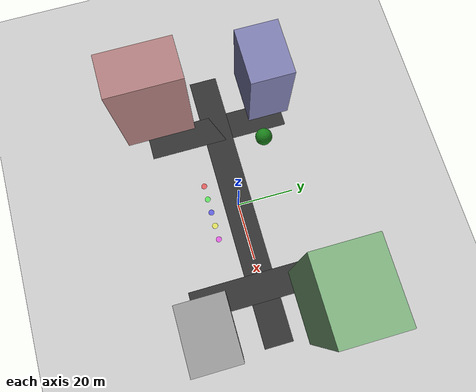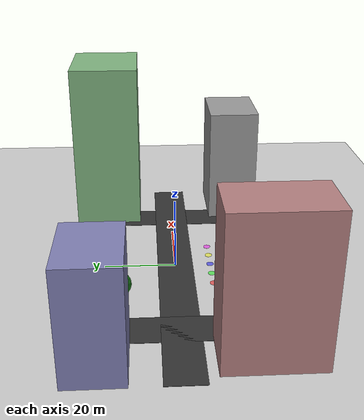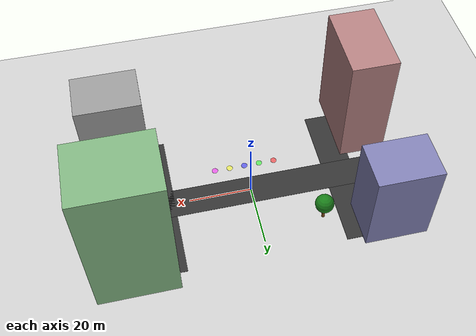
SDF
<?xml version="1.0" ?>
<sdf version="1.8">
  <world name="urban_small">
    <physics name="1ms" type="ignored">
      <max_step_size>0.001</max_step_size>
      <real_time_factor>1.0</real_time_factor>
    </physics>
    <plugin
      filename="ignition-gazebo-physics-system"
      name="ignition::gazebo::systems::Physics">
    </plugin>
    <plugin
      filename="ignition-gazebo-user-commands-system"
      name="ignition::gazebo::systems::UserCommands">
    </plugin>
    <plugin
      filename="ignition-gazebo-scene-broadcaster-system"
      name="ignition::gazebo::systems::SceneBroadcaster">
    </plugin>
    <plugin
      filename="ignition-gazebo-sensors-system"
      name="ignition::gazebo::systems::Sensors">
      <render_engine>ogre2</render_engine>
    </plugin>

    <scene>
      <ambient>1.0 1.0 1.0 1.0</ambient>
      <background>0.8 0.8 0.8 1.0</background>
      <shadows>true</shadows>
    </scene>

    <light type="directional" name="sun">
      <cast_shadows>true</cast_shadows>
      <pose>0 0 10 0 0 0</pose>
      <diffuse>0.8 0.8 0.8 1</diffuse>
      <specular>0.2 0.2 0.2 1</specular>
      <attenuation>
        <range>1000</range>
        <constant>0.9</constant>
        <linear>0.01</linear>
        <quadratic>0.001</quadratic>
      </attenuation>
      <direction>-0.5 0.1 -0.9</direction>
    </light>

    <model name="ground_plane">
      <static>true</static>
      <link name="link">
        <collision name="collision">
          <geometry>
            <plane>
              <normal>0 0 1</normal>
              <size>500 500</size>
            </plane>
          </geometry>
        </collision>
        <visual name="visual">
          <geometry>
            <plane>
              <normal>0 0 1</normal>
              <size>500 500</size>
            </plane>
          </geometry>
          <material>
            <ambient>0.8 0.8 0.8 1</ambient>
            <diffuse>0.8 0.8 0.8 1</diffuse>
            <specular>0.8 0.8 0.8 1</specular>
          </material>
        </visual>
      </link>
    </model>

    <!-- Roads -->
    <model name="road_main">
      <static>true</static>
      <link name="link">
        <collision name="collision">
          <geometry>
            <box>
              <size>100 10 0.1</size>
            </box>
          </geometry>
        </collision>
        <visual name="visual">
          <geometry>
            <box>
              <size>100 10 0.1</size>
            </box>
          </geometry>
          <material>
            <ambient>0.2 0.2 0.2 1</ambient>
            <diffuse>0.2 0.2 0.2 1</diffuse>
            <specular>0.2 0.2 0.2 1</specular>
          </material>
        </visual>
      </link>
      <pose>0 0 0.05 0 0 0</pose>
    </model>

    <model name="road_cross_1">
      <static>true</static>
      <link name="link">
        <collision name="collision">
          <geometry>
            <box>
              <size>10 50 0.1</size>
            </box>
          </geometry>
        </collision>
        <visual name="visual">
          <geometry>
            <box>
              <size>10 50 0.1</size>
            </box>
          </geometry>
          <material>
            <ambient>0.2 0.2 0.2 1</ambient>
            <diffuse>0.2 0.2 0.2 1</diffuse>
            <specular>0.2 0.2 0.2 1</specular>
          </material>
        </visual>
      </link>
      <pose>-30 0 0.05 0 0 0</pose>
    </model>

    <model name="road_cross_2">
      <static>true</static>
      <link name="link">
        <collision name="collision">
          <geometry>
            <box>
              <size>10 50 0.1</size>
            </box>
          </geometry>
        </collision>
        <visual name="visual">
          <geometry>
            <box>
              <size>10 50 0.1</size>
            </box>
          </geometry>
          <material>
            <ambient>0.2 0.2 0.2 1</ambient>
            <diffuse>0.2 0.2 0.2 1</diffuse>
            <specular>0.2 0.2 0.2 1</specular>
          </material>
        </visual>
      </link>
      <pose>30 0 0.05 0 0 0</pose>
    </model>

    <!-- Buildings -->
    <model name="building_1">
      <static>true</static>
      <link name="link">
        <collision name="collision">
          <geometry>
            <box>
              <size>20 15 30</size>
            </box>
          </geometry>
        </collision>
        <visual name="visual">
          <geometry>
            <box>
              <size>20 15 30</size>
            </box>
          </geometry>
          <material>
            <ambient>0.5 0.5 0.7 1</ambient>
            <diffuse>0.5 0.5 0.7 1</diffuse>
            <specular>0.5 0.5 0.7 1</specular>
          </material>
        </visual>
      </link>
      <pose>-40 20 15 0 0 0</pose>
    </model>

    <model name="building_2">
      <static>true</static>
      <link name="link">
        <collision name="collision">
          <geometry>
            <box>
              <size>15 25 40</size>
            </box>
          </geometry>
        </collision>
        <visual name="visual">
          <geometry>
            <box>
              <size>15 25 40</size>
            </box>
          </geometry>
          <material>
            <ambient>0.7 0.5 0.5 1</ambient>
            <diffuse>0.7 0.5 0.5 1</diffuse>
            <specular>0.7 0.5 0.5 1</specular>
          </material>
        </visual>
      </link>
      <pose>-40 -20 20 0 0 0</pose>
    </model>

    <model name="building_3">
      <static>true</static>
      <link name="link">
        <collision name="collision">
          <geometry>
            <box>
              <size>25 20 50</size>
            </box>
          </geometry>
        </collision>
        <visual name="visual">
          <geometry>
            <box>
              <size>25 20 50</size>
            </box>
          </geometry>
          <material>
            <ambient>0.5 0.7 0.5 1</ambient>
            <diffuse>0.5 0.7 0.5 1</diffuse>
            <specular>0.5 0.7 0.5 1</specular>
          </material>
        </visual>
      </link>
      <pose>40 20 25 0 0 0</pose>
    </model>

    <model name="building_4">
      <static>true</static>
      <link name="link">
        <collision name="collision">
          <geometry>
            <box>
              <size>20 15 35</size>
            </box>
          </geometry>
        </collision>
        <visual name="visual">
          <geometry>
            <box>
              <size>20 15 35</size>
            </box>
          </geometry>
          <material>
            <ambient>0.6 0.6 0.6 1</ambient>
            <diffuse>0.6 0.6 0.6 1</diffuse>
            <specular>0.6 0.6 0.6 1</specular>
          </material>
        </visual>
      </link>
      <pose>40 -20 17.5 0 0 0</pose>
    </model>

    <!-- Trees -->
    <model name="tree_1">
      <static>true</static>
      <link name="trunk">
        <collision name="collision">
          <geometry>
            <cylinder>
              <radius>0.5</radius>
              <length>4</length>
            </cylinder>
          </geometry>
        </collision>
        <visual name="visual">
          <geometry>
            <cylinder>
              <radius>0.5</radius>
              <length>4</length>
            </cylinder>
          </geometry>
          <material>
            <ambient>0.5 0.3 0.1 1</ambient>
            <diffuse>0.5 0.3 0.1 1</diffuse>
            <specular>0.5 0.3 0.1 1</specular>
          </material>
        </visual>
      </link>
      <link name="foliage">
        <collision name="collision">
          <geometry>
            <sphere>
              <radius>3</radius>
            </sphere>
          </geometry>
        </collision>
        <visual name="visual">
          <geometry>
            <sphere>
              <radius>3</radius>
            </sphere>
          </geometry>
          <material>
            <ambient>0.1 0.5 0.1 1</ambient>
            <diffuse>0.1 0.5 0.1 1</diffuse>
            <specular>0.1 0.5 0.1 1</specular>
          </material>
        </visual>
        <pose>0 0 5 0 0 0</pose>
      </link>
      <pose>-20 15 2 0 0 0</pose>
    </model>

    <!-- Spawn points for drones -->
    <model name="spawn_point_1">
      <static>true</static>
      <link name="link">
        <visual name="visual">
          <geometry>
            <cylinder>
              <radius>1</radius>
              <length>0.1</length>
            </cylinder>
          </geometry>
          <material>
            <ambient>1 0 0 0.5</ambient>
            <diffuse>1 0 0 0.5</diffuse>
            <specular>1 0 0 0.5</specular>
          </material>
        </visual>
      </link>
      <pose>-10 -10 0.05 0 0 0</pose>
    </model>

    <model name="spawn_point_2">
      <static>true</static>
      <link name="link">
        <visual name="visual">
          <geometry>
            <cylinder>
              <radius>1</radius>
              <length>0.1</length>
            </cylinder>
          </geometry>
          <material>
            <ambient>0 1 0 0.5</ambient>
            <diffuse>0 1 0 0.5</diffuse>
            <specular>0 1 0 0.5</specular>
          </material>
        </visual>
      </link>
      <pose>-5 -10 0.05 0 0 0</pose>
    </model>

    <model name="spawn_point_3">
      <static>true</static>
      <link name="link">
        <visual name="visual">
          <geometry>
            <cylinder>
              <radius>1</radius>
              <length>0.1</length>
            </cylinder>
          </geometry>
          <material>
            <ambient>0 0 1 0.5</ambient>
            <diffuse>0 0 1 0.5</diffuse>
            <specular>0 0 1 0.5</specular>
          </material>
        </visual>
      </link>
      <pose>0 -10 0.05 0 0 0</pose>
    </model>

    <model name="spawn_point_4">
      <static>true</static>
      <link name="link">
        <visual name="visual">
          <geometry>
            <cylinder>
              <radius>1</radius>
              <length>0.1</length>
            </cylinder>
          </geometry>
          <material>
            <ambient>1 1 0 0.5</ambient>
            <diffuse>1 1 0 0.5</diffuse>
            <specular>1 1 0 0.5</specular>
          </material>
        </visual>
      </link>
      <pose>5 -10 0.05 0 0 0</pose>
    </model>

    <model name="spawn_point_5">
      <static>true</static>
      <link name="link">
        <visual name="visual">
          <geometry>
            <cylinder>
              <radius>1</radius>
              <length>0.1</length>
            </cylinder>
          </geometry>
          <material>
            <ambient>1 0 1 0.5</ambient>
            <diffuse>1 0 1 0.5</diffuse>
            <specular>1 0 1 0.5</specular>
          </material>
        </visual>
      </link>
      <pose>10 -10 0.05 0 0 0</pose>
    </model>
  </world>
</sdf>
